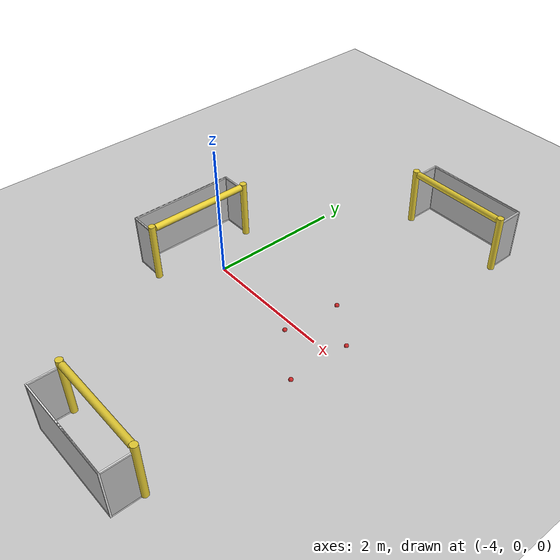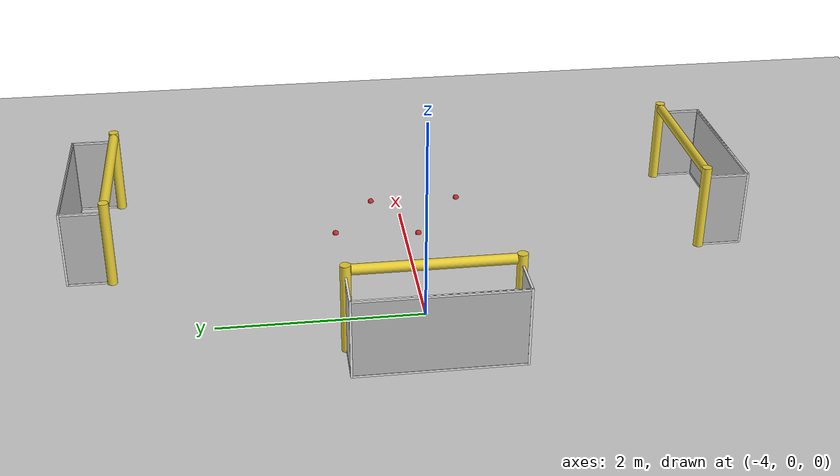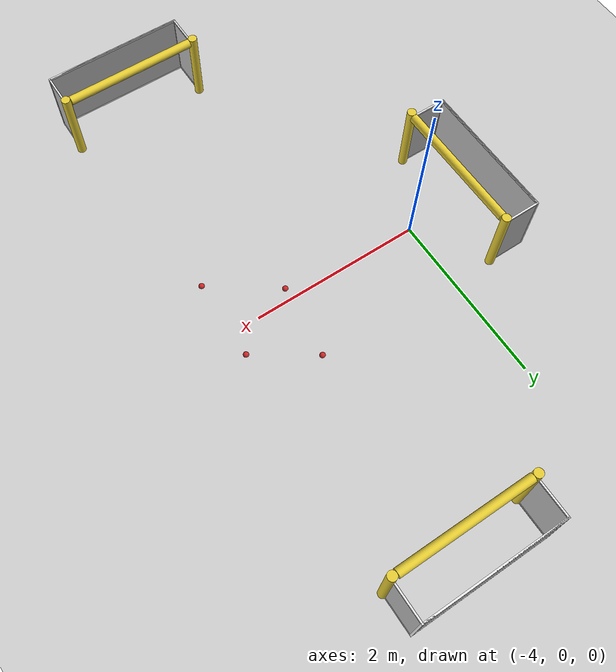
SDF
<sdf version="1.6">
 <world name="default">
  <light name="sun" type="directional">
   <pose>0 0 10 0 -0 0</pose>
   <diffuse>0.8 0.8 0.8 1</diffuse>
   <specular>0.2 0.2 0.2 1</specular>
   <attenuation>
    <range>1000</range>
    <constant>0.9</constant>
    <linear>0.01</linear>
    <quadratic>0.001</quadratic>
   </attenuation>
   <direction>-0.5 0.1 -0.9</direction>
  </light>
  <model name="ground_plane">
   <static>1</static>
   <link name="link">
    <collision name="collision">
     <geometry><plane><normal>0 0 1</normal><size>100 100</size></plane></geometry>
     <surface><friction><ode><mu>100</mu><mu2>50</mu2></ode></friction></surface>
    </collision>
    <visual name="visual">
     <cast_shadows>0</cast_shadows>
     <geometry><plane><normal>0 0 1</normal><size>100 100</size></plane></geometry>
     <material>
      <script><uri>file://media/materials/scripts/gazebo.material</uri><name>Gazebo/Grey</name></script>
     </material>
    </visual>
   </link>
  </model>
  <gravity>0 0 -9.8</gravity>
  <magnetic_field>6e-06 2.3e-05 -4.2e-05</magnetic_field>
  <atmosphere type="adiabatic"/>
  <physics name="default_physics" default="0" type="ode">
   <max_step_size>0.001</max_step_size>
   <real_time_factor>1</real_time_factor>
   <real_time_update_rate>1000</real_time_update_rate>
  </physics>
  <scene><ambient>0.4 0.4 0.4 1</ambient><background>0.7 0.7 0.7 1</background><shadows>1</shadows></scene>
  <spherical_coordinates>
   <surface_model>EARTH_WGS84</surface_model>
   <latitude_deg>0</latitude_deg>
   <longitude_deg>0</longitude_deg>
   <elevation>0</elevation>
   <heading_deg>0</heading_deg>
  </spherical_coordinates>
  <model name="RoboCup 2014 SPL Goal">
   <static>1</static>
   <link name="left_post">
    <pose>0 0.8 0.45 0 -0 0</pose>
    <collision name="collision">
     <geometry><cylinder><radius>0.05</radius><length>0.9</length></cylinder></geometry>
    </collision>
    <visual name="visual">
     <geometry><cylinder><radius>0.05</radius><length>0.9</length></cylinder></geometry>
     <material>
      <script><uri>file://media/materials/scripts/gazebo.material</uri><name>Gazebo/ZincYellow</name></script>
     </material>
    </visual>
   </link>
   <link name="left_support_horiz_lower">
    <pose>0.24 0.8 0.01 0 -0 0</pose>
    <collision name="collision"><geometry><box><size>0.38 0.02 0.02</size></box></geometry></collision>
    <visual name="visual">
     <geometry><box><size>0.38 0.02 0.02</size></box></geometry>
     <material>
      <script><uri>file://media/materials/scripts/gazebo.material</uri><name>Gazebo/White</name></script>
     </material>
    </visual>
   </link>
   <link name="left_support_horiz_upper">
    <pose>0.24 0.8 0.79 0 -0 0</pose>
    <collision name="collision"><geometry><box><size>0.38 0.02 0.02</size></box></geometry></collision>
    <visual name="visual">
     <geometry><box><size>0.38 0.02 0.02</size></box></geometry>
     <material>
      <script><uri>file://media/materials/scripts/gazebo.material</uri><name>Gazebo/White</name></script>
     </material>
    </visual>
   </link>
   <link name="left_support_vertical">
    <pose>0.44 0.8 0.4 3.14159 1.57079 3.14159</pose>
    <collision name="collision"><geometry><box><size>0.8 0.02 0.02</size></box></geometry></collision>
    <visual name="visual">
     <geometry><box><size>0.8 0.02 0.02</size></box></geometry>
     <material>
      <script><uri>file://media/materials/scripts/gazebo.material</uri><name>Gazebo/White</name></script>
     </material>
    </visual>
   </link>
   <link name="right_support_horiz_lower">
    <pose>0.24 -0.8 0.01 0 -0 0</pose>
    <collision name="collision"><geometry><box><size>0.38 0.02 0.02</size></box></geometry></collision>
    <visual name="visual">
     <geometry><box><size>0.38 0.02 0.02</size></box></geometry>
     <material>
      <script><uri>file://media/materials/scripts/gazebo.material</uri><name>Gazebo/White</name></script>
     </material>
    </visual>
   </link>
   <link name="right_support_horiz_upper">
    <pose>0.24 -0.8 0.79 0 -0 0</pose>
    <collision name="collision"><geometry><box><size>0.38 0.02 0.02</size></box></geometry></collision>
    <visual name="visual">
     <geometry><box><size>0.38 0.02 0.02</size></box></geometry>
     <material>
      <script><uri>file://media/materials/scripts/gazebo.material</uri><name>Gazebo/White</name></script>
     </material>
    </visual>
   </link>
   <link name="right_support_vertical">
    <pose>0.44 -0.8 0.4 3.14159 1.57079 3.14159</pose>
    <collision name="collision"><geometry><box><size>0.8 0.02 0.02</size></box></geometry></collision>
    <visual name="visual">
     <geometry><box><size>0.8 0.02 0.02</size></box></geometry>
     <material>
      <script><uri>file://media/materials/scripts/gazebo.material</uri><name>Gazebo/White</name></script>
     </material>
    </visual>
   </link>
   <link name="center_support_horiz_lower">
    <pose>0.44 0 0.01 3.14159 1.57079 3.14159</pose>
    <collision name="collision"><geometry><box><size>0.02 1.58 0.02</size></box></geometry></collision>
    <visual name="visual">
     <geometry><box><size>0.02 1.58 0.02</size></box></geometry>
     <material>
      <script><uri>file://media/materials/scripts/gazebo.material</uri><name>Gazebo/White</name></script>
     </material>
    </visual>
   </link>
   <link name="center_support_horiz_upper">
    <pose>0.44 0 0.79 3.14159 1.57079 3.14159</pose>
    <collision name="collision"><geometry><box><size>0.02 1.58 0.02</size></box></geometry></collision>
    <visual name="visual">
     <geometry><box><size>0.02 1.58 0.02</size></box></geometry>
     <material>
      <script><uri>file://media/materials/scripts/gazebo.material</uri><name>Gazebo/White</name></script>
     </material>
    </visual>
   </link>
   <link name="right_post">
    <pose>0 -0.8 0.45 0 -0 0</pose>
    <collision name="collision">
     <geometry><cylinder><radius>0.05</radius><length>0.9</length></cylinder></geometry>
    </collision>
    <visual name="visual">
     <geometry><cylinder><radius>0.05</radius><length>0.9</length></cylinder></geometry>
     <material>
      <script><uri>file://media/materials/scripts/gazebo.material</uri><name>Gazebo/ZincYellow</name></script>
     </material>
    </visual>
   </link>
   <link name="crossbar">
    <pose>0 0 0.85 1.57 1.57 0</pose>
    <collision name="collision">
     <geometry><cylinder><radius>0.05</radius><length>1.5</length></cylinder></geometry>
    </collision>
    <visual name="visual">
     <geometry><cylinder><radius>0.05</radius><length>1.5</length></cylinder></geometry>
     <material>
      <script><uri>file://media/materials/scripts/gazebo.material</uri><name>Gazebo/ZincYellow</name></script>
     </material>
    </visual>
   </link>
   <link name="center_net">
    <pose>0.44 0 0.4 0 -0 0</pose>
    <collision name="collision"><geometry><box><size>0.01 1.6 0.8</size></box></geometry></collision>
    <visual name="visual">
     <geometry><box><size>0.01 1.6 0.8</size></box></geometry>
     <material>
      <script>
       <uri>model://robocup09_spl_field/materials/scripts/</uri>
       <uri>model://robocup09_spl_field/materials/textures/</uri>
       <name>RoboCup/Net</name>
      </script>
     </material>
    </visual>
   </link>
   <link name="left_net">
    <pose>0.24 0.8 0.4 0 -0 0</pose>
    <collision name="collision"><geometry><box><size>0.38 0.01 0.76</size></box></geometry></collision>
    <visual name="visual">
     <geometry><box><size>0.38 0.01 0.76</size></box></geometry>
     <material>
      <script>
       <uri>model://robocup09_spl_field/materials/scripts/</uri>
       <uri>model://robocup09_spl_field/materials/textures/</uri>
       <name>RoboCup/Net</name>
      </script>
     </material>
    </visual>
   </link>
   <link name="right_net">
    <pose>0.24 -0.8 0.4 0 -0 0</pose>
    <collision name="collision"><geometry><box><size>0.38 0.01 0.76</size></box></geometry></collision>
    <visual name="visual">
     <geometry><box><size>0.38 0.01 0.76</size></box></geometry>
     <material>
      <script>
       <uri>model://robocup09_spl_field/materials/scripts/</uri>
       <uri>model://robocup09_spl_field/materials/textures/</uri>
       <name>RoboCup/Net</name>
      </script>
     </material>
    </visual>
   </link>
   <pose>-4.5 -0 0 0 -0 3.14159</pose>
  </model>
  <model name="RoboCup 2014 SPL Goal_0">
   <static>1</static>
   <link name="left_post">
    <pose>0 0.8 0.45 0 -0 0</pose>
    <collision name="collision">
     <geometry><cylinder><radius>0.05</radius><length>0.9</length></cylinder></geometry>
    </collision>
    <visual name="visual">
     <geometry><cylinder><radius>0.05</radius><length>0.9</length></cylinder></geometry>
     <material>
      <script><uri>file://media/materials/scripts/gazebo.material</uri><name>Gazebo/ZincYellow</name></script>
     </material>
    </visual>
   </link>
   <link name="left_support_horiz_lower">
    <pose>0.24 0.8 0.01 0 -0 0</pose>
    <collision name="collision"><geometry><box><size>0.38 0.02 0.02</size></box></geometry></collision>
    <visual name="visual">
     <geometry><box><size>0.38 0.02 0.02</size></box></geometry>
     <material>
      <script><uri>file://media/materials/scripts/gazebo.material</uri><name>Gazebo/White</name></script>
     </material>
    </visual>
   </link>
   <link name="left_support_horiz_upper">
    <pose>0.24 0.8 0.79 0 -0 0</pose>
    <collision name="collision"><geometry><box><size>0.38 0.02 0.02</size></box></geometry></collision>
    <visual name="visual">
     <geometry><box><size>0.38 0.02 0.02</size></box></geometry>
     <material>
      <script><uri>file://media/materials/scripts/gazebo.material</uri><name>Gazebo/White</name></script>
     </material>
    </visual>
   </link>
   <link name="left_support_vertical">
    <pose>0.44 0.8 0.4 3.14159 1.57079 3.14159</pose>
    <collision name="collision"><geometry><box><size>0.8 0.02 0.02</size></box></geometry></collision>
    <visual name="visual">
     <geometry><box><size>0.8 0.02 0.02</size></box></geometry>
     <material>
      <script><uri>file://media/materials/scripts/gazebo.material</uri><name>Gazebo/White</name></script>
     </material>
    </visual>
   </link>
   <link name="right_support_horiz_lower">
    <pose>0.24 -0.8 0.01 0 -0 0</pose>
    <collision name="collision"><geometry><box><size>0.38 0.02 0.02</size></box></geometry></collision>
    <visual name="visual">
     <geometry><box><size>0.38 0.02 0.02</size></box></geometry>
     <material>
      <script><uri>file://media/materials/scripts/gazebo.material</uri><name>Gazebo/White</name></script>
     </material>
    </visual>
   </link>
   <link name="right_support_horiz_upper">
    <pose>0.24 -0.8 0.79 0 -0 0</pose>
    <collision name="collision"><geometry><box><size>0.38 0.02 0.02</size></box></geometry></collision>
    <visual name="visual">
     <geometry><box><size>0.38 0.02 0.02</size></box></geometry>
     <material>
      <script><uri>file://media/materials/scripts/gazebo.material</uri><name>Gazebo/White</name></script>
     </material>
    </visual>
   </link>
   <link name="right_support_vertical">
    <pose>0.44 -0.8 0.4 3.14159 1.57079 3.14159</pose>
    <collision name="collision"><geometry><box><size>0.8 0.02 0.02</size></box></geometry></collision>
    <visual name="visual">
     <geometry><box><size>0.8 0.02 0.02</size></box></geometry>
     <material>
      <script><uri>file://media/materials/scripts/gazebo.material</uri><name>Gazebo/White</name></script>
     </material>
    </visual>
   </link>
   <link name="center_support_horiz_lower">
    <pose>0.44 0 0.01 3.14159 1.57079 3.14159</pose>
    <collision name="collision"><geometry><box><size>0.02 1.58 0.02</size></box></geometry></collision>
    <visual name="visual">
     <geometry><box><size>0.02 1.58 0.02</size></box></geometry>
     <material>
      <script><uri>file://media/materials/scripts/gazebo.material</uri><name>Gazebo/White</name></script>
     </material>
    </visual>
   </link>
   <link name="center_support_horiz_upper">
    <pose>0.44 0 0.79 3.14159 1.57079 3.14159</pose>
    <collision name="collision"><geometry><box><size>0.02 1.58 0.02</size></box></geometry></collision>
    <visual name="visual">
     <geometry><box><size>0.02 1.58 0.02</size></box></geometry>
     <material>
      <script><uri>file://media/materials/scripts/gazebo.material</uri><name>Gazebo/White</name></script>
     </material>
    </visual>
   </link>
   <link name="right_post">
    <pose>0 -0.8 0.45 0 -0 0</pose>
    <collision name="collision">
     <geometry><cylinder><radius>0.05</radius><length>0.9</length></cylinder></geometry>
    </collision>
    <visual name="visual">
     <geometry><cylinder><radius>0.05</radius><length>0.9</length></cylinder></geometry>
     <material>
      <script><uri>file://media/materials/scripts/gazebo.material</uri><name>Gazebo/ZincYellow</name></script>
     </material>
    </visual>
   </link>
   <link name="crossbar">
    <pose>0 0 0.85 1.57 1.57 0</pose>
    <collision name="collision">
     <geometry><cylinder><radius>0.05</radius><length>1.5</length></cylinder></geometry>
    </collision>
    <visual name="visual">
     <geometry><cylinder><radius>0.05</radius><length>1.5</length></cylinder></geometry>
     <material>
      <script><uri>file://media/materials/scripts/gazebo.material</uri><name>Gazebo/ZincYellow</name></script>
     </material>
    </visual>
   </link>
   <link name="center_net">
    <pose>0.44 0 0.4 0 -0 0</pose>
    <collision name="collision"><geometry><box><size>0.01 1.6 0.8</size></box></geometry></collision>
    <visual name="visual">
     <geometry><box><size>0.01 1.6 0.8</size></box></geometry>
     <material>
      <script>
       <uri>model://robocup09_spl_field/materials/scripts/</uri>
       <uri>model://robocup09_spl_field/materials/textures/</uri>
       <name>RoboCup/Net</name>
      </script>
     </material>
    </visual>
   </link>
   <link name="left_net">
    <pose>0.24 0.8 0.4 0 -0 0</pose>
    <collision name="collision"><geometry><box><size>0.38 0.01 0.76</size></box></geometry></collision>
    <visual name="visual">
     <geometry><box><size>0.38 0.01 0.76</size></box></geometry>
     <material>
      <script>
       <uri>model://robocup09_spl_field/materials/scripts/</uri>
       <uri>model://robocup09_spl_field/materials/textures/</uri>
       <name>RoboCup/Net</name>
      </script>
     </material>
    </visual>
   </link>
   <link name="right_net">
    <pose>0.24 -0.8 0.4 0 -0 0</pose>
    <collision name="collision"><geometry><box><size>0.38 0.01 0.76</size></box></geometry></collision>
    <visual name="visual">
     <geometry><box><size>0.38 0.01 0.76</size></box></geometry>
     <material>
      <script>
       <uri>model://robocup09_spl_field/materials/scripts/</uri>
       <uri>model://robocup09_spl_field/materials/textures/</uri>
       <name>RoboCup/Net</name>
      </script>
     </material>
    </visual>
   </link>
   <pose>-2.25 -3 0 0 0 -1.5708</pose>
  </model>
  <model name="RoboCup 2014 SPL Goal_clone">
   <static>1</static>
   <link name="left_post">
    <pose>0 0.8 0.45 0 -0 0</pose>
    <collision name="collision">
     <geometry><cylinder><radius>0.05</radius><length>0.9</length></cylinder></geometry>
    </collision>
    <visual name="visual">
     <geometry><cylinder><radius>0.05</radius><length>0.9</length></cylinder></geometry>
     <material>
      <script><uri>file://media/materials/scripts/gazebo.material</uri><name>Gazebo/ZincYellow</name></script>
     </material>
    </visual>
   </link>
   <link name="left_support_horiz_lower">
    <pose>0.24 0.8 0.01 0 -0 0</pose>
    <collision name="collision"><geometry><box><size>0.38 0.02 0.02</size></box></geometry></collision>
    <visual name="visual">
     <geometry><box><size>0.38 0.02 0.02</size></box></geometry>
     <material>
      <script><uri>file://media/materials/scripts/gazebo.material</uri><name>Gazebo/White</name></script>
     </material>
    </visual>
   </link>
   <link name="left_support_horiz_upper">
    <pose>0.24 0.8 0.79 0 -0 0</pose>
    <collision name="collision"><geometry><box><size>0.38 0.02 0.02</size></box></geometry></collision>
    <visual name="visual">
     <geometry><box><size>0.38 0.02 0.02</size></box></geometry>
     <material>
      <script><uri>file://media/materials/scripts/gazebo.material</uri><name>Gazebo/White</name></script>
     </material>
    </visual>
   </link>
   <link name="left_support_vertical">
    <pose>0.44 0.8 0.4 3.14159 1.57079 3.14159</pose>
    <collision name="collision"><geometry><box><size>0.8 0.02 0.02</size></box></geometry></collision>
    <visual name="visual">
     <geometry><box><size>0.8 0.02 0.02</size></box></geometry>
     <material>
      <script><uri>file://media/materials/scripts/gazebo.material</uri><name>Gazebo/White</name></script>
     </material>
    </visual>
   </link>
   <link name="right_support_horiz_lower">
    <pose>0.24 -0.8 0.01 0 -0 0</pose>
    <collision name="collision"><geometry><box><size>0.38 0.02 0.02</size></box></geometry></collision>
    <visual name="visual">
     <geometry><box><size>0.38 0.02 0.02</size></box></geometry>
     <material>
      <script><uri>file://media/materials/scripts/gazebo.material</uri><name>Gazebo/White</name></script>
     </material>
    </visual>
   </link>
   <link name="right_support_horiz_upper">
    <pose>0.24 -0.8 0.79 0 -0 0</pose>
    <collision name="collision"><geometry><box><size>0.38 0.02 0.02</size></box></geometry></collision>
    <visual name="visual">
     <geometry><box><size>0.38 0.02 0.02</size></box></geometry>
     <material>
      <script><uri>file://media/materials/scripts/gazebo.material</uri><name>Gazebo/White</name></script>
     </material>
    </visual>
   </link>
   <link name="right_support_vertical">
    <pose>0.44 -0.8 0.4 3.14159 1.57079 3.14159</pose>
    <collision name="collision"><geometry><box><size>0.8 0.02 0.02</size></box></geometry></collision>
    <visual name="visual">
     <geometry><box><size>0.8 0.02 0.02</size></box></geometry>
     <material>
      <script><uri>file://media/materials/scripts/gazebo.material</uri><name>Gazebo/White</name></script>
     </material>
    </visual>
   </link>
   <link name="center_support_horiz_lower">
    <pose>0.44 0 0.01 3.14159 1.57079 3.14159</pose>
    <collision name="collision"><geometry><box><size>0.02 1.58 0.02</size></box></geometry></collision>
    <visual name="visual">
     <geometry><box><size>0.02 1.58 0.02</size></box></geometry>
     <material>
      <script><uri>file://media/materials/scripts/gazebo.material</uri><name>Gazebo/White</name></script>
     </material>
    </visual>
   </link>
   <link name="center_support_horiz_upper">
    <pose>0.44 0 0.79 3.14159 1.57079 3.14159</pose>
    <collision name="collision"><geometry><box><size>0.02 1.58 0.02</size></box></geometry></collision>
    <visual name="visual">
     <geometry><box><size>0.02 1.58 0.02</size></box></geometry>
     <material>
      <script><uri>file://media/materials/scripts/gazebo.material</uri><name>Gazebo/White</name></script>
     </material>
    </visual>
   </link>
   <link name="right_post">
    <pose>0 -0.8 0.45 0 -0 0</pose>
    <collision name="collision">
     <geometry><cylinder><radius>0.05</radius><length>0.9</length></cylinder></geometry>
    </collision>
    <visual name="visual">
     <geometry><cylinder><radius>0.05</radius><length>0.9</length></cylinder></geometry>
     <material>
      <script><uri>file://media/materials/scripts/gazebo.material</uri><name>Gazebo/ZincYellow</name></script>
     </material>
    </visual>
   </link>
   <link name="crossbar">
    <pose>0 0 0.85 1.57 1.57 0</pose>
    <collision name="collision">
     <geometry><cylinder><radius>0.05</radius><length>1.5</length></cylinder></geometry>
    </collision>
    <visual name="visual">
     <geometry><cylinder><radius>0.05</radius><length>1.5</length></cylinder></geometry>
     <material>
      <script><uri>file://media/materials/scripts/gazebo.material</uri><name>Gazebo/ZincYellow</name></script>
     </material>
    </visual>
   </link>
   <link name="center_net">
    <pose>0.44 0 0.4 0 -0 0</pose>
    <collision name="collision"><geometry><box><size>0.01 1.6 0.8</size></box></geometry></collision>
    <visual name="visual">
     <geometry><box><size>0.01 1.6 0.8</size></box></geometry>
     <material>
      <script>
       <uri>model://robocup09_spl_field/materials/scripts/</uri>
       <uri>model://robocup09_spl_field/materials/textures/</uri>
       <name>RoboCup/Net</name>
      </script>
     </material>
    </visual>
   </link>
   <link name="left_net">
    <pose>0.24 0.8 0.4 0 -0 0</pose>
    <collision name="collision"><geometry><box><size>0.38 0.01 0.76</size></box></geometry></collision>
    <visual name="visual">
     <geometry><box><size>0.38 0.01 0.76</size></box></geometry>
     <material>
      <script>
       <uri>model://robocup09_spl_field/materials/scripts/</uri>
       <uri>model://robocup09_spl_field/materials/textures/</uri>
       <name>RoboCup/Net</name>
      </script>
     </material>
    </visual>
   </link>
   <link name="right_net">
    <pose>0.24 -0.8 0.4 0 -0 0</pose>
    <collision name="collision"><geometry><box><size>0.38 0.01 0.76</size></box></geometry></collision>
    <visual name="visual">
     <geometry><box><size>0.38 0.01 0.76</size></box></geometry>
     <material>
      <script>
       <uri>model://robocup09_spl_field/materials/scripts/</uri>
       <uri>model://robocup09_spl_field/materials/textures/</uri>
       <name>RoboCup/Net</name>
      </script>
     </material>
    </visual>
   </link>
   <pose>-2.25 3 0 0 -0 1.5708</pose>
  </model>
  <model name="RoboCup SPL Ball">
   <static>0</static>
   <link name="ball">
    <inertial>
     <mass>0.0056</mass>
     <inertia>
      <ixx>2.37e-06</ixx>
      <iyy>2.37e-06</iyy>
      <izz>2.37e-06</izz>
      <ixy>0</ixy>
      <ixz>0</ixz>
      <iyz>0</iyz>
     </inertia>
    </inertial>
    <collision name="collision"><geometry><sphere><radius>0.0325</radius></sphere></geometry></collision>
    <visual name="visual">
     <geometry><sphere><radius>0.0325</radius></sphere></geometry>
     <material>
      <script><uri>file://media/materials/scripts/gazebo.material</uri><name>Gazebo/RedBright</name></script>
     </material>
    </visual>
   </link>
   <pose>-1.69323 -0.666819 0 0 -0 0</pose>
  </model>
  <model name="RoboCup SPL Ball_0">
   <static>0</static>
   <link name="ball">
    <inertial>
     <mass>0.0056</mass>
     <inertia>
      <ixx>2.37e-06</ixx>
      <iyy>2.37e-06</iyy>
      <izz>2.37e-06</izz>
      <ixy>0</ixy>
      <ixz>0</ixz>
      <iyz>0</iyz>
     </inertia>
    </inertial>
    <collision name="collision"><geometry><sphere><radius>0.0325</radius></sphere></geometry></collision>
    <visual name="visual">
     <geometry><sphere><radius>0.0325</radius></sphere></geometry>
     <material>
      <script><uri>file://media/materials/scripts/gazebo.material</uri><name>Gazebo/RedBright</name></script>
     </material>
    </visual>
   </link>
   <pose>-1.66779 0.280457 0 0 -0 0</pose>
  </model>
  <model name="RoboCup SPL Ball_1">
   <static>0</static>
   <link name="ball">
    <inertial>
     <mass>0.0056</mass>
     <inertia>
      <ixx>2.37e-06</ixx>
      <iyy>2.37e-06</iyy>
      <izz>2.37e-06</izz>
      <ixy>0</ixy>
      <ixz>0</ixz>
      <iyz>0</iyz>
     </inertia>
    </inertial>
    <collision name="collision"><geometry><sphere><radius>0.0325</radius></sphere></geometry></collision>
    <visual name="visual">
     <geometry><sphere><radius>0.0325</radius></sphere></geometry>
     <material>
      <script><uri>file://media/materials/scripts/gazebo.material</uri><name>Gazebo/RedBright</name></script>
     </material>
    </visual>
   </link>
   <pose>-2.43581 -0.144325 0 0 -0 0</pose>
  </model>
  <model name="RoboCup SPL Ball_2">
   <static>0</static>
   <link name="ball">
    <inertial>
     <mass>0.0056</mass>
     <inertia>
      <ixx>2.37e-06</ixx>
      <iyy>2.37e-06</iyy>
      <izz>2.37e-06</izz>
      <ixy>0</ixy>
      <ixz>0</ixz>
      <iyz>0</iyz>
     </inertia>
    </inertial>
    <collision name="collision"><geometry><sphere><radius>0.0325</radius></sphere></geometry></collision>
    <visual name="visual">
     <geometry><sphere><radius>0.0325</radius></sphere></geometry>
     <material>
      <script><uri>file://media/materials/scripts/gazebo.material</uri><name>Gazebo/RedBright</name></script>
     </material>
    </visual>
   </link>
   <pose>-2.33236 0.723753 0 0 -0 0</pose>
  </model>
 </world>
</sdf>
